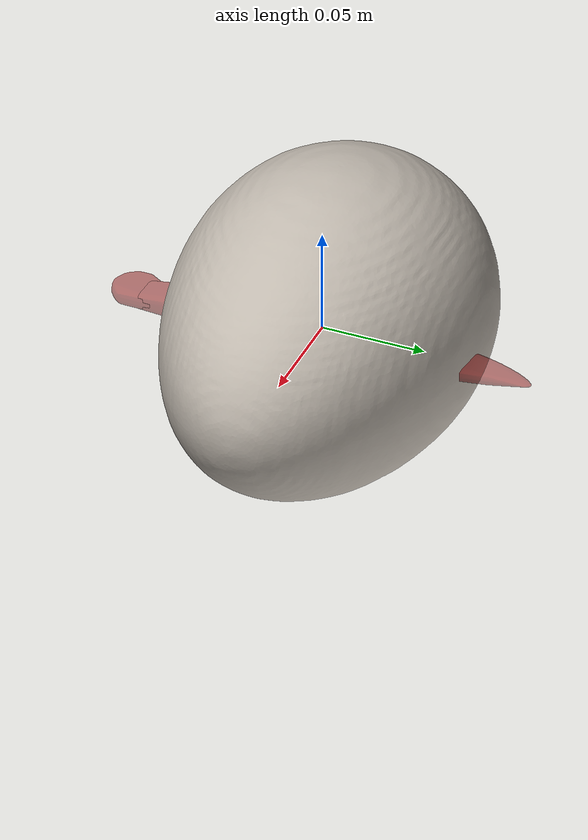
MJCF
<?xml version='1.0' encoding='utf-8'?>
<mujoco model="kitchen_knife_19">
  <asset>
    <mesh file="visual/model_normalized_0.obj" name="model_normalized_0_vis" scale="0.20500000000000002 0.20500000000000002 0.20500000000000002" refquat="0.7071067811865474 -5.551115123125783e-17 -0.7071067811865476 5.551115123125782e-17" />
    <texture type="2d" name="image0" file="visual/image0.png" />
    <material name="Scene_-_Root.027" texture="image0" specular="0.55" shininess="0.45" />
    <mesh file="collision/collision_mesh_collision_0.obj" name="knife_collision_mesh_0" scale="0.20500000000000002 0.20500000000000002 0.20500000000000002" refquat="0.7071067811865474 -5.551115123125783e-17 -0.7071067811865476 5.551115123125782e-17" />
    <mesh file="collision/collision_mesh_collision_1.obj" name="knife_collision_mesh_1" scale="0.20500000000000002 0.20500000000000002 0.20500000000000002" refquat="0.7071067811865474 -5.551115123125783e-17 -0.7071067811865476 5.551115123125782e-17" />
    <mesh file="collision/collision_mesh_collision_2.obj" name="knife_collision_mesh_2" scale="0.20500000000000002 0.20500000000000002 0.20500000000000002" refquat="0.7071067811865474 -5.551115123125783e-17 -0.7071067811865476 5.551115123125782e-17" />
    <mesh file="collision/collision_mesh_collision_3.obj" name="knife_collision_mesh_3" scale="0.20500000000000002 0.20500000000000002 0.20500000000000002" refquat="0.7071067811865474 -5.551115123125783e-17 -0.7071067811865476 5.551115123125782e-17" />
    <mesh file="collision/collision_mesh_collision_4.obj" name="knife_collision_mesh_4" scale="0.20500000000000002 0.20500000000000002 0.20500000000000002" refquat="0.7071067811865474 -5.551115123125783e-17 -0.7071067811865476 5.551115123125782e-17" />
    </asset>
  <default>
    <default class="region">
      <geom group="1" conaffinity="0" contype="0" rgba="0 1 0 0" />
      </default>
    <default class="collision">
      <geom group="0" rgba="0.5 0 0 0.5" density="1000.0" />
      </default>
    </default>
  <worldbody>
    <body>
      <body name="object">
        <geom solimp="0.998 0.998 0.001" solref="0.001 1" density="100" friction="0.95 0.3 0.1" type="mesh" mesh="model_normalized_0_vis" conaffinity="0" contype="0" group="1" material="Scene_-_Root.027" />
        <geom class="region" name="reg_bbox" type="box" pos="-2.4141825000006876e-05 0.0005192434750000015 -0.00016006810000000022" size="0.014004374099999991 0.10250000000000001 0.0051484192000000005" />
        <geom mesh="knife_collision_mesh_0" type="mesh" class="collision" />
        <geom mesh="knife_collision_mesh_1" type="mesh" class="collision" />
        <geom mesh="knife_collision_mesh_2" type="mesh" class="collision" />
        <geom mesh="knife_collision_mesh_3" type="mesh" class="collision" />
        <geom mesh="knife_collision_mesh_4" type="mesh" class="collision" />
        </body>
      </body>
    </worldbody>
    <custom><text name="material_gt" data="metal_plastic" /></custom>
  </mujoco>
